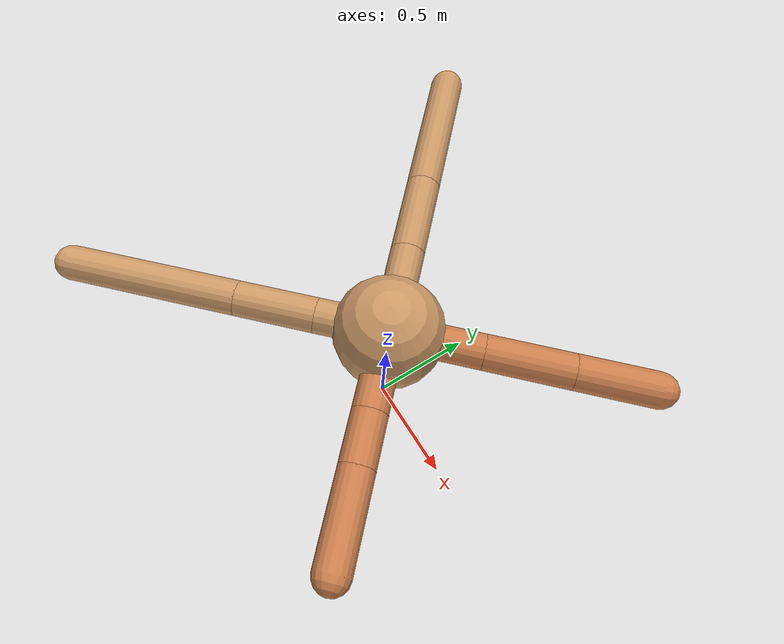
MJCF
<mujoco model="ant">
  <compiler angle="degree" coordinate="local" inertiafromgeom="true" />
  <option integrator="RK4" timestep="0.01" />
  <custom>
    <numeric data="0.0 0.0 0.55 1.0 0.0 0.0 0.0 0.0 1.0 0.0 -1.0 0.0 -1.0 0.0 1.0" name="init_qpos" />
  </custom>
  <default>
    <joint armature="1" damping="1" limited="true" />
    <geom conaffinity="0" condim="3" density="5.0" friction="1.5 0.1 0.1" margin="0.01" rgba="0.8 0.6 0.4 1" />
  </default>
  <worldbody>
    <body name="torso" pos="0 0 0.75">
      <geom name="torso_geom" pos="0 0 0" size="0.25" type="sphere" />

      <body name="front_left_leg" pos="0 0 0">
        <geom fromto="0.0 0.0 0.0 0.2928552593195381 0.2928552593195381 0.0" name="aux_1_geom" size="0.08" type="capsule" rgba=".8 .5 .3 1" />
        <body name="aux_1" pos="0.2928552593195381 0.2928552593195381 0.0">
          <joint axis="0 0 1" name="hip_1" pos="0.0 0.0 0.0" range="-40 40" type="hinge" />
          <geom fromto="0.0 0.0 0.0 0.27201228176583075 0.27201228176583075 0.0" name="left_leg_geom" size="0.08" type="capsule" rgba=".8 .5 .3 1" />
          <body pos="0.27201228176583075 0.27201228176583075 0.0" name="front_left_foot">
            <joint axis="-1 1 0" name="ankle_1" pos="0.0 0.0 0.0" range="30 100" type="hinge" />
            <geom fromto="0.0 0.0 0.0 0.2504278486373179 0.2504278486373179 0.0" name="left_ankle_geom" size="0.08" type="capsule" rgba=".8 .5 .3 1" />
          </body>
        </body>
      </body>
      <body name="front_right_leg" pos="0 0 0">
        <geom fromto="0.0 0.0 0.0 -0.2891205076273899 0.2891205076273899 0.0" name="aux_2_geom" size="0.08" type="capsule" />
        <body name="aux_2" pos="-0.2891205076273899 0.2891205076273899 0.0">
          <joint axis="0 0 1" name="hip_2" pos="0.0 0.0 0.0" range="-40 40" type="hinge" />
          <geom fromto="0.0 0.0 0.0 -0.2721409486506822 0.2721409486506822 0.0" name="right_leg_geom" size="0.08" type="capsule" />
          <body pos="-0.2721409486506822 0.2721409486506822 0.0" name="front_right_foot">
            <joint axis="1 1 0" name="ankle_2" pos="0.0 0.0 0.0" range="-100 -30" type="hinge" />
            <geom fromto="0.0 0.0 0.0 -0.4670196525223325 0.4670196525223325 0.0" name="right_ankle_geom" size="0.08" type="capsule" />
          </body>
        </body>
      </body>
      <body name="left_back_leg" pos="0 0 0">
        <geom fromto="0.0 0.0 0.0 -0.2309920641431924 -0.2309920641431924 0.0" name="aux_3_geom" size="0.08" type="capsule" />
        <body name="aux_3" pos="-0.2309920641431924 -0.2309920641431924 0.0">
          <joint axis="0 0 1" name="hip_3" pos="0.0 0.0 0.0" range="-40 40" type="hinge" />
          <geom fromto="0.0 0.0 0.0 -0.25779414129989536 -0.25779414129989536 0.0" name="back_leg_geom" size="0.08" type="capsule" />
          <body pos="-0.25779414129989536 -0.25779414129989536 0.0" name="left_back_foot">
            <joint axis="-1 1 0" name="ankle_3" pos="0.0 0.0 0.0" range="-100 -30" type="hinge" />
            <geom fromto="0.0 0.0 0.0 -0.5563652287392946 -0.5563652287392946 0.0" name="third_ankle_geom" size="0.08" type="capsule" />
          </body>
        </body>
      </body>
      <body name="right_back_leg" pos="0 0 0">
        <geom fromto="0.0 0.0 0.0 0.26544119011328016 -0.26544119011328016 0.0" name="aux_4_geom" size="0.08" type="capsule" rgba=".8 .5 .3 1" />
        <body name="aux_4" pos="0.26544119011328016 -0.26544119011328016 0.0">
          <joint axis="0 0 1" name="hip_4" pos="0.0 0.0 0.0" range="-40 40" type="hinge" />
          <geom fromto="0.0 0.0 0.0 0.16424795462914557 -0.16424795462914557 0.0" name="rightback_leg_geom" size="0.08" type="capsule" rgba=".8 .5 .3 1" />
          <body pos="0.16424795462914557 -0.16424795462914557 0.0" name="right_back_foot">
            <joint axis="1 1 0" name="ankle_4" pos="0.0 0.0 0.0" range="30 100" type="hinge" />
            <geom fromto="0.0 0.0 0.0 0.2862592759117674 -0.2862592759117674 0.0" name="fourth_ankle_geom" size="0.08" type="capsule" rgba=".8 .5 .3 1" />
          </body>
        </body>
      </body>
    </body>
  </worldbody>
  <actuator>
    <motor ctrllimited="true" ctrlrange="-1.0 1.0" joint="hip_4" gear="150" />
    <motor ctrllimited="true" ctrlrange="-1.0 1.0" joint="ankle_4" gear="150" />
    <motor ctrllimited="true" ctrlrange="-1.0 1.0" joint="hip_1" gear="150" />
    <motor ctrllimited="true" ctrlrange="-1.0 1.0" joint="ankle_1" gear="150" />
    <motor ctrllimited="true" ctrlrange="-1.0 1.0" joint="hip_2" gear="150" />
    <motor ctrllimited="true" ctrlrange="-1.0 1.0" joint="ankle_2" gear="150" />
    <motor ctrllimited="true" ctrlrange="-1.0 1.0" joint="hip_3" gear="150" />
    <motor ctrllimited="true" ctrlrange="-1.0 1.0" joint="ankle_3" gear="150" />
  </actuator>
</mujoco>
